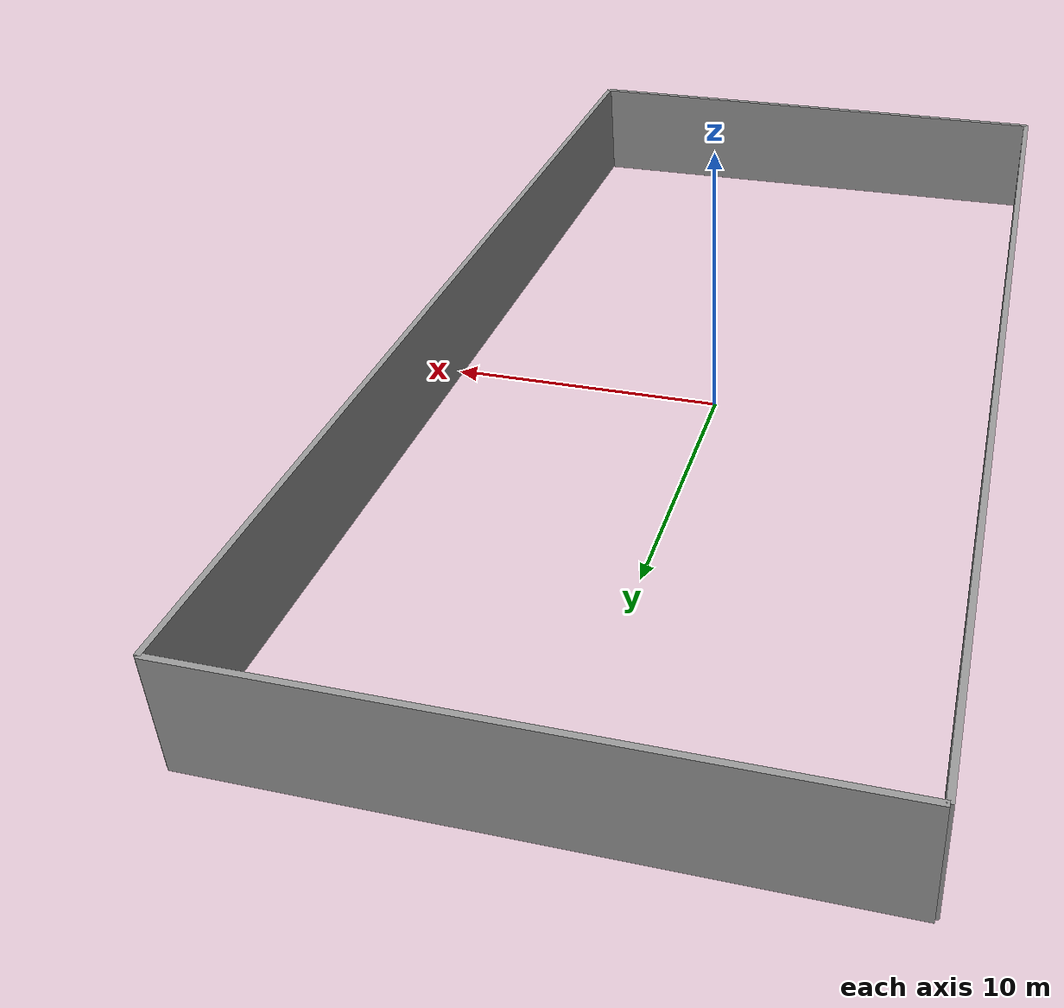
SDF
<?xml version='1.0'?>
<sdf version='1.4'>
  <model name='challenge_w1'>
    <link name='Wall_South'>
      <collision name='Wall_South_Collision'>
        <geometry>
          <box>
            <size>20 0.2 4</size>
          </box>
        </geometry>
        <pose>0 0 2 0 -0 0</pose>
      </collision>
      <visual name='Wall_South_Visual'>
        <pose>0 0 2 0 -0 0</pose>
        <geometry>
          <box>
            <size>20 0.2 4</size>
          </box>
        </geometry>
        <material>
          <script>
            <uri>file://media/materials/scripts/gazebo.material</uri>
            <name>Gazebo/Grey</name>
          </script>
        </material>
      </visual>
      <velocity_decay>
        <linear>0</linear>
        <angular>0</angular>
      </velocity_decay>
      <pose>0 -20 0 0 -0 0</pose>
    </link>
    <link name='Wall_East'>
      <collision name='Wall_21_Collision'>
        <geometry>
          <box>
            <size>40 0.2 4</size>
          </box>
        </geometry>
        <pose>0 0 2 0 -0 0</pose>
      </collision>
      <visual name='Wall_21_Visual'>
        <pose>0 0 2 0 -0 0</pose>
        <geometry>
          <box>
            <size>40 0.2 4</size>
          </box>
        </geometry>
        <material>
          <script>
            <uri>file://media/materials/scripts/gazebo.material</uri>
            <name>Gazebo/Grey</name>
          </script>
        </material>
      </visual>
      <velocity_decay>
        <linear>0</linear>
        <angular>0</angular>
      </velocity_decay>
      <pose>10 0 0 0 -0 1.5708</pose>
    </link>
    <link name='Wall_North'>
      <collision name='Wall_22_Collision'>
        <geometry>
          <box>
            <size>20 0.2 4</size>
          </box>
        </geometry>
        <pose>0 0 2 0 -0 0</pose>
      </collision>
      <visual name='Wall_22_Visual'>
        <pose>0 0 2 0 -0 0</pose>
        <geometry>
          <box>
            <size>20 0.2 4</size>
          </box>
        </geometry>
        <material>
          <script>
            <uri>file://media/materials/scripts/gazebo.material</uri>
            <name>Gazebo/Grey</name>
          </script>
        </material>
      </visual>
      <velocity_decay>
        <linear>0</linear>
        <angular>0</angular>
      </velocity_decay>
      <pose>0 20 0 0 -0 3.14159</pose>
    </link>
    <link name='Wall_West'>
      <collision name='Wall_23_Collision'>
        <geometry>
          <box>
            <size>40 0.2 4</size>
          </box>
        </geometry>
        <pose>0 0 2 0 -0 0</pose>
      </collision>
      <visual name='Wall_23_Visual'>
        <pose>0 0 2 0 -0 0</pose>
        <geometry>
          <box>
            <size>40 0.2 4</size>
          </box>
        </geometry>
        <material>
          <script>
            <uri>file://media/materials/scripts/gazebo.material</uri>
            <name>Gazebo/Grey</name>
          </script>
        </material>
      </visual>
      <velocity_decay>
        <linear>0</linear>
        <angular>0</angular>
      </velocity_decay>
      <pose>-10 0 0 0 0 -1.5708</pose>
    </link>
    <static>1</static>
  </model>
</sdf>
